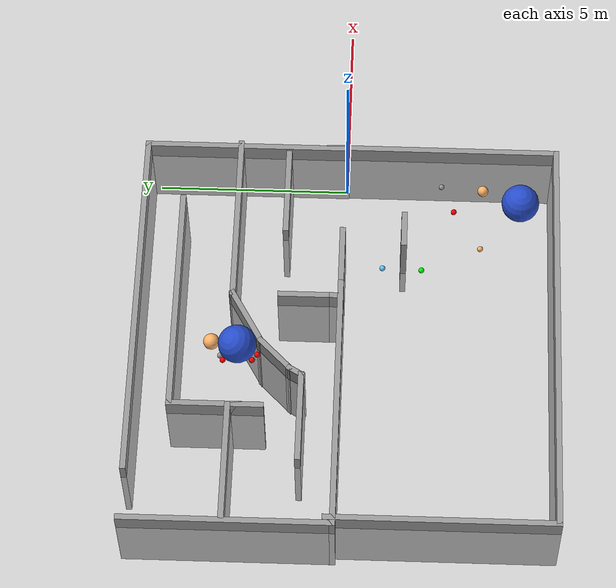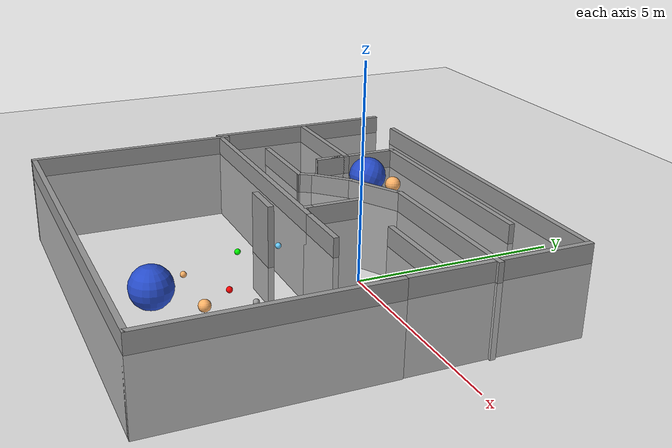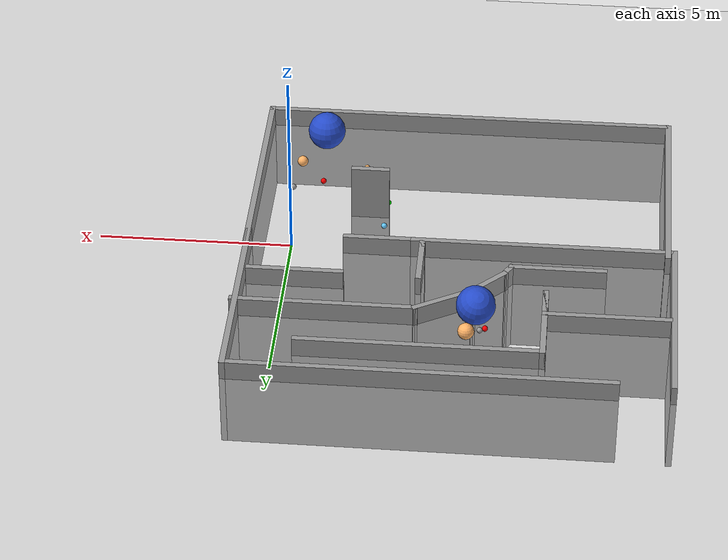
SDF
<sdf version="1.7">
 <world name="default">
  <light name="sun" type="directional">
   <pose>0 0 10 0 -0 0</pose>
   <diffuse>0.8 0.8 0.8 1</diffuse>
   <specular>0.2 0.2 0.2 1</specular>
   <attenuation>
    <range>1000</range>
    <constant>0.9</constant>
    <linear>0.01</linear>
    <quadratic>0.001</quadratic>
   </attenuation>
   <direction>-0.5 0.1 -0.9</direction>
   <spot><inner_angle>0</inner_angle><outer_angle>0</outer_angle><falloff>0</falloff></spot>
  </light>
  <model name="ground_plane">
   <static>1</static>
   <link name="link">
    <collision name="collision">
     <geometry><plane><normal>0 0 1</normal><size>100 100</size></plane></geometry>
     <surface>
      <contact><collide_bitmask>65535</collide_bitmask></contact>
      <friction><ode><mu>100</mu><mu2>50</mu2></ode></friction>
     </surface>
    </collision>
    <visual name="visual">
     <cast_shadows>0</cast_shadows>
     <geometry><plane><normal>0 0 1</normal><size>100 100</size></plane></geometry>
     <material>
      <script><uri>file://media/materials/scripts/gazebo.material</uri><name>Gazebo/Grey</name></script>
     </material>
    </visual>
   </link>
  </model>
  <gravity>0 0 -9.8</gravity>
  <magnetic_field>6e-06 2.3e-05 -4.2e-05</magnetic_field>
  <atmosphere type="adiabatic"/>
  <physics type="ode">
   <max_step_size>0.001</max_step_size>
   <real_time_factor>1</real_time_factor>
   <real_time_update_rate>1000</real_time_update_rate>
  </physics>
  <scene><ambient>0.4 0.4 0.4 1</ambient><background>0.7 0.7 0.7 1</background><shadows>1</shadows></scene>
  <spherical_coordinates>
   <surface_model>EARTH_WGS84</surface_model>
   <latitude_deg>0</latitude_deg>
   <longitude_deg>0</longitude_deg>
   <elevation>0</elevation>
   <heading_deg>0</heading_deg>
  </spherical_coordinates>
  <model name="wallreall">
   <pose>-4.35394 2.74718 -2 0 -0 0</pose>
   <link name="Wall_11">
    <collision name="Wall_11_Collision">
     <geometry><box><size>2.5 0.15 2.5</size></box></geometry>
     <pose>0 0 1.25 0 -0 0</pose>
    </collision>
    <visual name="Wall_11_Visual">
     <pose>0 0 1.25 0 -0 0</pose>
     <geometry><box><size>2.5 0.15 2.5</size></box></geometry>
     <material>
      <script><uri>file://media/materials/scripts/gazebo.material</uri><name>Gazebo/Grey</name></script>
      <ambient>1 1 1 1</ambient>
     </material>
     <meta><layer>0</layer></meta>
    </visual>
    <pose>4.09209 -1.14764 0 0 -0 0</pose>
   </link>
   <link name="Wall_16">
    <collision name="Wall_16_Collision">
     <geometry><box><size>0.25 0.15 2.5</size></box></geometry>
     <pose>0 0 1.25 0 -0 0</pose>
    </collision>
    <visual name="Wall_16_Visual">
     <pose>0 0 1.25 0 -0 0</pose>
     <geometry><box><size>0.25 0.15 2.5</size></box></geometry>
     <material>
      <script><uri>file://media/materials/scripts/gazebo.material</uri><name>Gazebo/Grey</name></script>
      <ambient>1 1 1 1</ambient>
     </material>
     <meta><layer>0</layer></meta>
    </visual>
    <pose>0.933342 -2.49369 0 0 -0 -1.5708</pose>
   </link>
   <link name="Wall_18">
    <collision name="Wall_18_Collision">
     <geometry><box><size>3.25 0.15 2.5</size></box></geometry>
     <pose>0 0 1.25 0 -0 0</pose>
    </collision>
    <visual name="Wall_18_Visual">
     <pose>0 0 1.25 0 -0 0</pose>
     <geometry><box><size>3.25 0.15 2.5</size></box></geometry>
     <material>
      <script><uri>file://media/materials/scripts/gazebo.material</uri><name>Gazebo/Grey</name></script>
      <ambient>1 1 1 1</ambient>
     </material>
     <meta><layer>0</layer></meta>
    </visual>
    <pose>-3.86466 0.121961 0 0 -0 0</pose>
   </link>
   <link name="Wall_19">
    <collision name="Wall_19_Collision">
     <geometry><box><size>1 0.15 2.5</size></box></geometry>
     <pose>0 0 1.25 0 -0 0</pose>
    </collision>
    <visual name="Wall_19_Visual">
     <pose>0 0 1.25 0 -0 0</pose>
     <geometry><box><size>1 0.15 2.5</size></box></geometry>
     <material>
      <script><uri>file://media/materials/scripts/gazebo.material</uri><name>Gazebo/Grey</name></script>
      <ambient>1 1 1 1</ambient>
     </material>
     <meta><layer>0</layer></meta>
    </visual>
    <pose>-2.31466 -0.303039 0 0 -0 -1.5708</pose>
   </link>
   <link name="Wall_2">
    <collision name="Wall_2_Collision">
     <geometry><box><size>7 0.15 2.5</size></box></geometry>
     <pose>0 0 1.25 0 -0 0</pose>
    </collision>
    <visual name="Wall_2_Visual">
     <pose>0 0 1.25 0 -0 0</pose>
     <geometry><box><size>7 0.15 2.5</size></box></geometry>
     <material>
      <script><uri>file://media/materials/scripts/gazebo.material</uri><name>Gazebo/Grey</name></script>
      <ambient>1 1 1 1</ambient>
     </material>
     <meta><layer>0</layer></meta>
    </visual>
    <pose>-2.10834 -2.66116 0 0 -0 0</pose>
   </link>
   <link name="Wall_20">
    <collision name="Wall_20_Collision">
     <geometry><box><size>2.5 0.15 2.5</size></box></geometry>
     <pose>0 0 1.25 0 -0 0</pose>
    </collision>
    <visual name="Wall_20_Visual">
     <pose>0 0 1.25 0 -0 0</pose>
     <geometry><box><size>2.5 0.15 2.5</size></box></geometry>
     <material>
      <script><uri>file://media/materials/scripts/gazebo.material</uri><name>Gazebo/Grey</name></script>
      <ambient>1 1 1 1</ambient>
     </material>
     <meta><layer>0</layer></meta>
    </visual>
    <pose>-2.31466 0.446961 0 0 -0 1.5708</pose>
   </link>
   <link name="Wall_21">
    <collision name="Wall_21_Collision">
     <geometry><box><size>6.25 0.15 2.5</size></box></geometry>
     <pose>0 0 1.25 0 -0 0</pose>
    </collision>
    <visual name="Wall_21_Visual">
     <pose>0 0 1.25 0 -0 0</pose>
     <geometry><box><size>6.25 0.15 2.5</size></box></geometry>
     <material>
      <script><uri>file://media/materials/scripts/gazebo.material</uri><name>Gazebo/Grey</name></script>
      <ambient>1 1 1 1</ambient>
     </material>
     <meta><layer>0</layer></meta>
    </visual>
    <pose>0.735342 1.62196 0 0 -0 0</pose>
   </link>
   <link name="Wall_25">
    <collision name="Wall_25_Collision">
     <geometry><box><size>4.75 0.15 2.5</size></box></geometry>
     <pose>0 0 1.25 0 -0 0</pose>
    </collision>
    <visual name="Wall_25_Visual">
     <pose>0 0 1.25 0 -0 0</pose>
     <geometry><box><size>4.75 0.15 2.5</size></box></geometry>
     <material>
      <script><uri>file://media/materials/scripts/gazebo.material</uri><name>Gazebo/Grey</name></script>
      <ambient>1 1 1 1</ambient>
     </material>
     <meta><layer>0</layer></meta>
    </visual>
    <pose>3.23334 0.156311 0 0 -0 0</pose>
   </link>
   <link name="Wall_27">
    <collision name="Wall_27_Collision">
     <geometry><box><size>1.5 0.15 2.5</size></box></geometry>
     <pose>0 0 1.25 0 -0 0</pose>
    </collision>
    <visual name="Wall_27_Visual">
     <pose>0 0 1.25 0 -0 0</pose>
     <geometry><box><size>1.5 0.15 2.5</size></box></geometry>
     <material>
      <script><uri>file://media/materials/scripts/gazebo.material</uri><name>Gazebo/Grey</name></script>
      <ambient>1 1 1 1</ambient>
     </material>
     <meta><layer>0</layer></meta>
    </visual>
    <pose>0.933342 -1.76869 0 0 -0 1.5708</pose>
   </link>
   <link name="Wall_29">
    <collision name="Wall_29_Collision">
     <geometry><box><size>1.75 0.15 2.5</size></box></geometry>
     <pose>0 0 1.25 0 -0 0</pose>
    </collision>
    <visual name="Wall_29_Visual">
     <pose>0 0 1.25 0 -0 0</pose>
     <geometry><box><size>1.75 0.15 2.5</size></box></geometry>
     <material>
      <script><uri>file://media/materials/scripts/gazebo.material</uri><name>Gazebo/Grey</name></script>
      <ambient>1 1 1 1</ambient>
     </material>
     <meta><layer>0</layer></meta>
    </visual>
    <pose>0.240521 -0.243689 0 0 -0 -2.61799</pose>
   </link>
   <link name="Wall_31">
    <collision name="Wall_31_Collision">
     <geometry><box><size>1.25 0.15 2.5</size></box></geometry>
     <pose>0 0 1.25 0 -0 0</pose>
    </collision>
    <visual name="Wall_31_Visual">
     <pose>0 0 1.25 0 -0 0</pose>
     <geometry><box><size>1.25 0.15 2.5</size></box></geometry>
     <material>
      <script><uri>file://media/materials/scripts/gazebo.material</uri><name>Gazebo/Grey</name></script>
      <ambient>1 1 1 1</ambient>
     </material>
     <meta><layer>0</layer></meta>
    </visual>
    <pose>-0.841208 -1.0326 0 0 -0 -2.35619</pose>
   </link>
   <link name="Wall_32">
    <collision name="Wall_32_Collision">
     <geometry><box><size>0.5 0.15 2.5</size></box></geometry>
     <pose>0 0 1.25 0 -0 0</pose>
    </collision>
    <visual name="Wall_32_Visual">
     <pose>0 0 1.25 0 -0 0</pose>
     <geometry><box><size>0.5 0.15 2.5</size></box></geometry>
     <material>
      <script><uri>file://media/materials/scripts/gazebo.material</uri><name>Gazebo/Grey</name></script>
      <ambient>1 1 1 1</ambient>
     </material>
     <meta><layer>0</layer></meta>
    </visual>
    <pose>-1.31762 -1.57306 0 0 -0 -2.0944</pose>
   </link>
   <link name="Wall_33">
    <collision name="Wall_33_Collision">
     <geometry><box><size>2.5 0.15 2.5</size></box></geometry>
     <pose>0 0 1.25 0 -0 0</pose>
    </collision>
    <visual name="Wall_33_Visual">
     <pose>0 0 1.25 0 -0 0</pose>
     <geometry><box><size>2.5 0.15 2.5</size></box></geometry>
     <material>
      <script><uri>file://media/materials/scripts/gazebo.material</uri><name>Gazebo/Grey</name></script>
      <ambient>1 1 1 1</ambient>
     </material>
     <meta><layer>0</layer></meta>
    </visual>
    <pose>-2.58012 -1.72462 0 0 -0 3.14159</pose>
   </link>
   <link name="Wall_4">
    <collision name="Wall_4_Collision">
     <geometry><box><size>5.5 0.15 2.5</size></box></geometry>
     <pose>0 0 1.25 0 -0 0</pose>
    </collision>
    <visual name="Wall_4_Visual">
     <pose>0 0 1.25 0 -0 0</pose>
     <geometry><box><size>5.5 0.15 2.5</size></box></geometry>
     <material>
      <script><uri>file://media/materials/scripts/gazebo.material</uri><name>Gazebo/Grey</name></script>
      <ambient>1 1 1 1</ambient>
     </material>
     <meta><layer>0</layer></meta>
    </visual>
    <pose>-5.53334 0.013839 0 0 -0 1.5708</pose>
   </link>
   <link name="Wall_6">
    <collision name="Wall_6_Collision">
     <geometry><box><size>9.75 0.15 2.5</size></box></geometry>
     <pose>0 0 1.25 0 -0 0</pose>
    </collision>
    <visual name="Wall_6_Visual">
     <pose>0 0 1.25 0 -0 0</pose>
     <geometry><box><size>9.75 0.15 2.5</size></box></geometry>
     <material>
      <script><uri>file://media/materials/scripts/gazebo.material</uri><name>Gazebo/Grey</name></script>
      <ambient>1 1 1 1</ambient>
     </material>
     <meta><layer>0</layer></meta>
    </visual>
    <pose>0.654942 2.66116 0 0 -0 0</pose>
   </link>
   <link name="Wall_7">
    <collision name="Wall_7_Collision">
     <geometry><box><size>5.5 0.15 2.5</size></box></geometry>
     <pose>0 0 1.25 0 -0 0</pose>
    </collision>
    <visual name="Wall_7_Visual">
     <pose>0 0 1.25 0 -0 0</pose>
     <geometry><box><size>5.5 0.15 2.5</size></box></geometry>
     <material>
      <script><uri>file://media/materials/scripts/gazebo.material</uri><name>Gazebo/Grey</name></script>
      <ambient>1 1 1 1</ambient>
     </material>
     <meta><layer>0</layer></meta>
    </visual>
    <pose>5.45494 -0.013839 0 0 -0 -1.5708</pose>
   </link>
   <link name="Wall_9">
    <collision name="Wall_9_Collision">
     <geometry><box><size>1.75 0.15 2.5</size></box></geometry>
     <pose>0 0 1.25 0 -0 0</pose>
    </collision>
    <visual name="Wall_9_Visual">
     <pose>0 0 1.25 0 -0 0</pose>
     <geometry><box><size>1.75 0.15 2.5</size></box></geometry>
     <material>
      <script><uri>file://media/materials/scripts/gazebo.material</uri><name>Gazebo/Grey</name></script>
      <ambient>1 1 1 1</ambient>
     </material>
     <meta><layer>0</layer></meta>
    </visual>
    <pose>2.11666 -2.66116 0 0 -0 0</pose>
   </link>
   <static>1</static>
  </model>
  <model name="task1">
   <pose>-4.30169 -2.53199 -2 0 -0 0</pose>
   <link name="Wall_10">
    <collision name="Wall_10_Collision">
     <geometry><box><size>6 0.15 2.5</size></box></geometry>
     <pose>0 0 1.25 0 -0 0</pose>
    </collision>
    <visual name="Wall_10_Visual">
     <pose>0 0 1.25 0 -0 0</pose>
     <geometry><box><size>6 0.15 2.5</size></box></geometry>
     <material>
      <script><uri>file://media/materials/scripts/gazebo.material</uri><name>Gazebo/Grey</name></script>
      <ambient>1 1 1 1</ambient>
     </material>
     <meta><layer>0</layer></meta>
    </visual>
    <pose>-5.425 -0.125 0 0 -0 -1.5708</pose>
   </link>
   <link name="Wall_11">
    <collision name="Wall_11_Collision">
     <geometry><box><size>11 0.15 2.5</size></box></geometry>
     <pose>0 0 1.25 0 -0 0</pose>
    </collision>
    <visual name="Wall_11_Visual">
     <pose>0 0 1.25 0 -0 0</pose>
     <geometry><box><size>11 0.15 2.5</size></box></geometry>
     <material>
      <script><uri>file://media/materials/scripts/gazebo.material</uri><name>Gazebo/Grey</name></script>
      <ambient>1 1 1 1</ambient>
     </material>
     <meta><layer>0</layer></meta>
    </visual>
    <pose>0 -3.05 0 0 -0 0</pose>
   </link>
   <link name="Wall_12">
    <collision name="Wall_12_Collision">
     <geometry><box><size>6.25 0.15 2.5</size></box></geometry>
     <pose>0 0 1.25 0 -0 0</pose>
    </collision>
    <visual name="Wall_12_Visual">
     <pose>0 0 1.25 0 -0 0</pose>
     <geometry><box><size>6.25 0.15 2.5</size></box></geometry>
     <material>
      <script><uri>file://media/materials/scripts/gazebo.material</uri><name>Gazebo/Grey</name></script>
      <ambient>1 1 1 1</ambient>
     </material>
     <meta><layer>0</layer></meta>
    </visual>
    <pose>5.425 0 0 0 -0 1.5708</pose>
   </link>
   <static>1</static>
  </model>
  <model name="a_reall_ball02">
   <link name="link">
    <inertial>
     <mass>0.0445585</mass>
     <inertia>
      <ixx>9.787e-05</ixx>
      <ixy>0</ixy>
      <ixz>0</ixz>
      <iyy>9.787e-05</iyy>
      <iyz>0</iyz>
      <izz>9.787e-05</izz>
     </inertia>
    </inertial>
    <pose>0 0 0.136953 0 -0 0</pose>
    <visual name="visual">
     <geometry><sphere><radius>0.0741029</radius></sphere></geometry>
     <material>
      <script><name>Gazebo/Grey</name><uri>file://media/materials/scripts/gazebo.material</uri></script>
      <shader type="pixel"><normal_map>__default__</normal_map></shader>
      <ambient>1 1 1 0</ambient>
      <diffuse>0.7 0.7 0.7 1</diffuse>
      <specular>0.01 0.01 0.01 1</specular>
      <emissive>0 0 0 1</emissive>
     </material>
    </visual>
    <collision name="collision">
     <geometry><sphere><radius>0.074103</radius></sphere></geometry>
     <surface>
      <friction>
       <ode><mu>1</mu><mu2>1</mu2><fdir1>0 0 0</fdir1><slip1>0</slip1><slip2>0</slip2></ode>
       <torsional>
        <coefficient>1</coefficient>
        <patch_radius>0</patch_radius>
        <surface_radius>0</surface_radius>
        <use_patch_radius>1</use_patch_radius>
        <ode><slip>0</slip></ode>
       </torsional>
      </friction>
      <bounce><restitution_coefficient>0</restitution_coefficient><threshold>1e+06</threshold></bounce>
      <contact>
       <collide_without_contact>0</collide_without_contact>
       <collide_without_contact_bitmask>1</collide_without_contact_bitmask>
       <collide_bitmask>1</collide_bitmask>
       <ode>
        <soft_cfm>0</soft_cfm>
        <soft_erp>0.2</soft_erp>
        <kp>1e+13</kp>
        <kd>1</kd>
        <max_vel>0.01</max_vel>
        <min_depth>0</min_depth>
       </ode>
       <bullet>
        <split_impulse>1</split_impulse>
        <split_impulse_penetration_threshold>-0.01</split_impulse_penetration_threshold>
        <soft_cfm>0</soft_cfm>
        <soft_erp>0.2</soft_erp>
        <kp>1e+13</kp>
        <kd>1</kd>
       </bullet>
      </contact>
     </surface>
    </collision>
   </link>
   <static>0</static>
   <pose>0.218138 -2.52371 -0.06285 0 -0 0</pose>
  </model>
  <model name="a_reall_ball02_0">
   <link name="link">
    <inertial>
     <mass>0.0445585</mass>
     <inertia>
      <ixx>9.787e-05</ixx>
      <ixy>0</ixy>
      <ixz>0</ixz>
      <iyy>9.787e-05</iyy>
      <iyz>0</iyz>
      <izz>9.787e-05</izz>
     </inertia>
    </inertial>
    <pose>0 0 0.136953 0 -0 0</pose>
    <visual name="visual">
     <geometry><sphere><radius>0.0741029</radius></sphere></geometry>
     <material>
      <script><name>Gazebo/Grey</name><uri>file://media/materials/scripts/gazebo.material</uri></script>
      <shader type="pixel"><normal_map>__default__</normal_map></shader>
      <ambient>1 0 0 0</ambient>
      <diffuse>0.7 0.7 0.7 1</diffuse>
      <specular>0.01 0.01 0.01 1</specular>
      <emissive>0 0 0 1</emissive>
     </material>
    </visual>
    <collision name="collision">
     <geometry><sphere><radius>0.074103</radius></sphere></geometry>
     <surface>
      <friction>
       <ode><mu>1</mu><mu2>1</mu2><fdir1>0 0 0</fdir1><slip1>0</slip1><slip2>0</slip2></ode>
       <torsional>
        <coefficient>1</coefficient>
        <patch_radius>0</patch_radius>
        <surface_radius>0</surface_radius>
        <use_patch_radius>1</use_patch_radius>
        <ode><slip>0</slip></ode>
       </torsional>
      </friction>
      <bounce><restitution_coefficient>0</restitution_coefficient><threshold>1e+06</threshold></bounce>
      <contact>
       <collide_without_contact>0</collide_without_contact>
       <collide_without_contact_bitmask>1</collide_without_contact_bitmask>
       <collide_bitmask>1</collide_bitmask>
       <ode>
        <soft_cfm>0</soft_cfm>
        <soft_erp>0.2</soft_erp>
        <kp>1e+13</kp>
        <kd>1</kd>
        <max_vel>0.01</max_vel>
        <min_depth>0</min_depth>
       </ode>
       <bullet>
        <split_impulse>1</split_impulse>
        <split_impulse_penetration_threshold>-0.01</split_impulse_penetration_threshold>
        <soft_cfm>0</soft_cfm>
        <soft_erp>0.2</soft_erp>
        <kp>1e+13</kp>
        <kd>1</kd>
       </bullet>
      </contact>
     </surface>
    </collision>
   </link>
   <static>0</static>
   <pose>-0.55361 -2.85771 -0.06285 0 -0 0</pose>
  </model>
  <model name="a_reall_ball02_1">
   <link name="link">
    <inertial>
     <mass>0.0445585</mass>
     <inertia>
      <ixx>9.787e-05</ixx>
      <ixy>0</ixy>
      <ixz>0</ixz>
      <iyy>9.787e-05</iyy>
      <iyz>0</iyz>
      <izz>9.787e-05</izz>
     </inertia>
    </inertial>
    <pose>0 0 0.136953 0 -0 0</pose>
    <visual name="visual">
     <geometry><sphere><radius>0.0741029</radius></sphere></geometry>
     <material>
      <script><name>Gazebo/Grey</name><uri>file://media/materials/scripts/gazebo.material</uri></script>
      <shader type="pixel"><normal_map>__default__</normal_map></shader>
      <ambient>0.4 0.8 1 0</ambient>
      <diffuse>0.7 0.7 0.7 1</diffuse>
      <specular>0.01 0.01 0.01 1</specular>
      <emissive>0 0 0 1</emissive>
     </material>
    </visual>
    <collision name="collision">
     <geometry><sphere><radius>0.074103</radius></sphere></geometry>
     <surface>
      <friction>
       <ode><mu>1</mu><mu2>1</mu2><fdir1>0 0 0</fdir1><slip1>0</slip1><slip2>0</slip2></ode>
       <torsional>
        <coefficient>1</coefficient>
        <patch_radius>0</patch_radius>
        <surface_radius>0</surface_radius>
        <use_patch_radius>1</use_patch_radius>
        <ode><slip>0</slip></ode>
       </torsional>
      </friction>
      <bounce><restitution_coefficient>0</restitution_coefficient><threshold>1e+06</threshold></bounce>
      <contact>
       <collide_without_contact>0</collide_without_contact>
       <collide_without_contact_bitmask>1</collide_without_contact_bitmask>
       <collide_bitmask>1</collide_bitmask>
       <ode>
        <soft_cfm>0</soft_cfm>
        <soft_erp>0.2</soft_erp>
        <kp>1e+13</kp>
        <kd>1</kd>
        <max_vel>0.01</max_vel>
        <min_depth>0</min_depth>
       </ode>
       <bullet>
        <split_impulse>1</split_impulse>
        <split_impulse_penetration_threshold>-0.01</split_impulse_penetration_threshold>
        <soft_cfm>0</soft_cfm>
        <soft_erp>0.2</soft_erp>
        <kp>1e+13</kp>
        <kd>1</kd>
       </bullet>
      </contact>
     </surface>
    </collision>
   </link>
   <static>0</static>
   <pose>-2.33768 -0.990806 -0.06285 0 -0 0</pose>
  </model>
  <model name="a_reall_ball">
   <link name="link">
    <inertial>
     <mass>0.318333</mass>
     <inertia>
      <ixx>0.00259372</ixx>
      <ixy>0</ixy>
      <ixz>0</ixz>
      <iyy>0.00259372</iyy>
      <iyz>0</iyz>
      <izz>0.00259372</izz>
     </inertia>
    </inertial>
    <pose>0 0 0.136953 0 -0 0</pose>
    <visual name="visual">
     <geometry><sphere><radius>0.142722</radius></sphere></geometry>
     <material>
      <script><name>Gazebo/Grey</name><uri>file://media/materials/scripts/gazebo.material</uri></script>
      <shader type="pixel"><normal_map>__default__</normal_map></shader>
      <ambient>1 0.7 0.4 0</ambient>
      <diffuse>0.7 0.7 0.7 1</diffuse>
      <specular>0.01 0.01 0.01 1</specular>
      <emissive>0 0 0 1</emissive>
     </material>
    </visual>
    <collision name="collision">
     <geometry><sphere><radius>0.142722</radius></sphere></geometry>
     <surface>
      <friction>
       <ode><mu>1</mu><mu2>1</mu2><fdir1>0 0 0</fdir1><slip1>0</slip1><slip2>0</slip2></ode>
       <torsional>
        <coefficient>1</coefficient>
        <patch_radius>0</patch_radius>
        <surface_radius>0</surface_radius>
        <use_patch_radius>1</use_patch_radius>
        <ode><slip>0</slip></ode>
       </torsional>
      </friction>
      <bounce><restitution_coefficient>0</restitution_coefficient><threshold>1e+06</threshold></bounce>
      <contact>
       <collide_without_contact>0</collide_without_contact>
       <collide_without_contact_bitmask>1</collide_without_contact_bitmask>
       <collide_bitmask>1</collide_bitmask>
       <ode>
        <soft_cfm>0</soft_cfm>
        <soft_erp>0.2</soft_erp>
        <kp>1e+13</kp>
        <kd>1</kd>
        <max_vel>0.01</max_vel>
        <min_depth>0</min_depth>
       </ode>
       <bullet>
        <split_impulse>1</split_impulse>
        <split_impulse_penetration_threshold>-0.01</split_impulse_penetration_threshold>
        <soft_cfm>0</soft_cfm>
        <soft_erp>0.2</soft_erp>
        <kp>1e+13</kp>
        <kd>1</kd>
       </bullet>
      </contact>
     </surface>
    </collision>
   </link>
   <static>0</static>
   <pose>0.082977 -3.63115 0.005769 0 -0 0</pose>
  </model>
  <model name="a_reall_ball02_2">
   <link name="link">
    <inertial>
     <mass>0.0445585</mass>
     <inertia>
      <ixx>9.78725e-05</ixx>
      <ixy>0</ixy>
      <ixz>0</ixz>
      <iyy>9.78725e-05</iyy>
      <iyz>0</iyz>
      <izz>9.78725e-05</izz>
     </inertia>
    </inertial>
    <pose>-0 -0 0.136953 0 -0 0</pose>
    <visual name="visual">
     <geometry><sphere><radius>0.0741029</radius></sphere></geometry>
     <material>
      <script><name>Gazebo/Grey</name><uri>file://media/materials/scripts/gazebo.material</uri></script>
      <shader type="pixel"><normal_map>__default__</normal_map></shader>
      <ambient>1 0.7 0.4 0</ambient>
      <diffuse>0.7 0.7 0.7 1</diffuse>
      <specular>0.01 0.01 0.01 1</specular>
      <emissive>0 0 0 1</emissive>
     </material>
    </visual>
    <collision name="collision">
     <geometry><sphere><radius>0.074103</radius></sphere></geometry>
     <surface>
      <friction>
       <ode><mu>1</mu><mu2>1</mu2><fdir1>0 0 0</fdir1><slip1>0</slip1><slip2>0</slip2></ode>
       <torsional>
        <coefficient>1</coefficient>
        <patch_radius>0</patch_radius>
        <surface_radius>0</surface_radius>
        <use_patch_radius>1</use_patch_radius>
        <ode><slip>0</slip></ode>
       </torsional>
      </friction>
      <bounce><restitution_coefficient>0</restitution_coefficient><threshold>1e+06</threshold></bounce>
      <contact>
       <collide_without_contact>0</collide_without_contact>
       <collide_without_contact_bitmask>1</collide_without_contact_bitmask>
       <collide_bitmask>1</collide_bitmask>
       <ode>
        <soft_cfm>0</soft_cfm>
        <soft_erp>0.2</soft_erp>
        <kp>1e+13</kp>
        <kd>1</kd>
        <max_vel>0.01</max_vel>
        <min_depth>0</min_depth>
       </ode>
       <bullet>
        <split_impulse>1</split_impulse>
        <split_impulse_penetration_threshold>-0.01</split_impulse_penetration_threshold>
        <soft_cfm>0</soft_cfm>
        <soft_erp>0.2</soft_erp>
        <kp>1e+13</kp>
        <kd>1</kd>
       </bullet>
      </contact>
     </surface>
    </collision>
   </link>
   <static>0</static>
   <pose>-1.67048 -3.5694 -0.06285 0 -0 0</pose>
  </model>
  <model name="ball1">
   <link name="link_0">
    <inertial>
     <mass>1</mass>
     <inertia><ixx>0.1</ixx><ixy>0</ixy><ixz>0</ixz><iyy>0.1</iyy><iyz>0</iyz><izz>0.1</izz></inertia>
    </inertial>
    <visual name="visual">
     <geometry><sphere><radius>0.5</radius></sphere></geometry>
     <material>
      <lighting>1</lighting>
      <script><uri>file://media/materials/scripts/gazebo.material</uri><name>Gazebo/Blue</name></script>
      <shader type="pixel"/>
     </material>
    </visual>
    <collision name="collision">
     <geometry><sphere><radius>0.5</radius></sphere></geometry>
     <surface>
      <friction>
       <ode><mu>1</mu><mu2>1</mu2><fdir1>0 0 0</fdir1><slip1>0</slip1><slip2>0</slip2></ode>
       <torsional>
        <coefficient>1</coefficient>
        <patch_radius>0</patch_radius>
        <surface_radius>0</surface_radius>
        <use_patch_radius>1</use_patch_radius>
        <ode><slip>0</slip></ode>
       </torsional>
      </friction>
      <bounce><restitution_coefficient>0</restitution_coefficient><threshold>1e+06</threshold></bounce>
      <contact>
       <collide_without_contact>0</collide_without_contact>
       <collide_without_contact_bitmask>1</collide_without_contact_bitmask>
       <collide_bitmask>1</collide_bitmask>
       <ode>
        <soft_cfm>0</soft_cfm>
        <soft_erp>0.2</soft_erp>
        <kp>1e+13</kp>
        <kd>1</kd>
        <max_vel>0.01</max_vel>
        <min_depth>0</min_depth>
       </ode>
       <bullet>
        <split_impulse>1</split_impulse>
        <split_impulse_penetration_threshold>-0.01</split_impulse_penetration_threshold>
        <soft_cfm>0</soft_cfm>
        <soft_erp>0.2</soft_erp>
        <kp>1e+13</kp>
        <kd>1</kd>
       </bullet>
      </contact>
     </surface>
    </collision>
   </link>
   <static>0</static>
   <pose>-0.477168 -4.61402 0.5 0 -0 0</pose>
  </model>
  <model name="lvseball">
   <link name="link">
    <inertial>
     <mass>0.0445585</mass>
     <inertia>
      <ixx>9.787e-05</ixx>
      <ixy>0</ixy>
      <ixz>0</ixz>
      <iyy>9.787e-05</iyy>
      <iyz>0</iyz>
      <izz>9.787e-05</izz>
     </inertia>
    </inertial>
    <pose>0 0 0.136953 0 -0 0</pose>
    <visual name="visual">
     <geometry><sphere><radius>0.0741029</radius></sphere></geometry>
     <material>
      <script><name>Gazebo/Grey</name><uri>file://media/materials/scripts/gazebo.material</uri></script>
      <shader type="pixel"><normal_map>__default__</normal_map></shader>
      <ambient>0 1 0 0</ambient>
      <diffuse>0.7 0.7 0.7 1</diffuse>
      <specular>0.01 0.01 0.01 1</specular>
      <emissive>0 0 0 1</emissive>
     </material>
    </visual>
    <collision name="collision">
     <geometry><sphere><radius>0.074103</radius></sphere></geometry>
     <surface>
      <friction>
       <ode><mu>1</mu><mu2>1</mu2><fdir1>0 0 0</fdir1><slip1>0</slip1><slip2>0</slip2></ode>
       <torsional>
        <coefficient>1</coefficient>
        <patch_radius>0</patch_radius>
        <surface_radius>0</surface_radius>
        <use_patch_radius>1</use_patch_radius>
        <ode><slip>0</slip></ode>
       </torsional>
      </friction>
      <bounce><restitution_coefficient>0</restitution_coefficient><threshold>1e+06</threshold></bounce>
      <contact>
       <collide_without_contact>0</collide_without_contact>
       <collide_without_contact_bitmask>1</collide_without_contact_bitmask>
       <collide_bitmask>1</collide_bitmask>
       <ode>
        <soft_cfm>0</soft_cfm>
        <soft_erp>0.2</soft_erp>
        <kp>1e+13</kp>
        <kd>1</kd>
        <max_vel>0.01</max_vel>
        <min_depth>0</min_depth>
       </ode>
       <bullet>
        <split_impulse>1</split_impulse>
        <split_impulse_penetration_threshold>-0.01</split_impulse_penetration_threshold>
        <soft_cfm>0</soft_cfm>
        <soft_erp>0.2</soft_erp>
        <kp>1e+13</kp>
        <kd>1</kd>
       </bullet>
      </contact>
     </surface>
    </collision>
   </link>
   <static>0</static>
   <pose>-2.37026 -2.0221 -0.06285 0 -0 0</pose>
  </model>
  <model name="Untitled">
   <pose>-0.959633 -0.88997 -1 0 -0 0</pose>
   <link name="Wall_31">
    <collision name="Wall_31_Collision">
     <geometry><box><size>1 0.15 2.5</size></box></geometry>
     <pose>0 0 1.25 0 -0 0</pose>
    </collision>
    <visual name="Wall_31_Visual">
     <pose>0 0 1.25 0 -0 0</pose>
     <geometry><box><size>1 0.15 2.5</size></box></geometry>
     <material>
      <script><uri>file://media/materials/scripts/gazebo.material</uri><name>Gazebo/Grey</name></script>
      <ambient>1 1 1 1</ambient>
     </material>
     <meta><layer>0</layer></meta>
    </visual>
    <pose>-0.97391 -0.644656 0 0 -0 0</pose>
   </link>
   <static>1</static>
  </model>
  <model name="ball1_0">
   <link name="link_0">
    <inertial>
     <mass>1</mass>
     <inertia><ixx>0.1</ixx><ixy>0</ixy><ixz>0</ixz><iyy>0.1</iyy><iyz>0</iyz><izz>0.1</izz></inertia>
    </inertial>
    <visual name="visual">
     <geometry><sphere><radius>0.5</radius></sphere></geometry>
     <material>
      <lighting>1</lighting>
      <script><uri>file://media/materials/scripts/gazebo.material</uri><name>Gazebo/Blue</name></script>
      <shader type="pixel"/>
     </material>
    </visual>
    <collision name="collision">
     <geometry><sphere><radius>0.5</radius></sphere></geometry>
     <surface>
      <friction>
       <ode><mu>1</mu><mu2>1</mu2><fdir1>0 0 0</fdir1><slip1>0</slip1><slip2>0</slip2></ode>
       <torsional>
        <coefficient>1</coefficient>
        <patch_radius>0</patch_radius>
        <surface_radius>0</surface_radius>
        <use_patch_radius>1</use_patch_radius>
        <ode><slip>0</slip></ode>
       </torsional>
      </friction>
      <bounce><restitution_coefficient>0</restitution_coefficient><threshold>1e+06</threshold></bounce>
      <contact>
       <collide_without_contact>0</collide_without_contact>
       <collide_without_contact_bitmask>1</collide_without_contact_bitmask>
       <collide_bitmask>1</collide_bitmask>
       <ode>
        <soft_cfm>0</soft_cfm>
        <soft_erp>0.2</soft_erp>
        <kp>1e+13</kp>
        <kd>1</kd>
        <max_vel>0.01</max_vel>
        <min_depth>0</min_depth>
       </ode>
       <bullet>
        <split_impulse>1</split_impulse>
        <split_impulse_penetration_threshold>-0.01</split_impulse_penetration_threshold>
        <soft_cfm>0</soft_cfm>
        <soft_erp>0.2</soft_erp>
        <kp>1e+13</kp>
        <kd>1</kd>
       </bullet>
      </contact>
     </surface>
    </collision>
   </link>
   <static>0</static>
   <pose>-4.9421 2.70087 0.5 -0.482075 -0.127893 0.03176</pose>
  </model>
  <model name="a_reall_ball02_0_0">
   <link name="link">
    <inertial>
     <mass>0.0445585</mass>
     <inertia>
      <ixx>9.787e-05</ixx>
      <ixy>0</ixy>
      <ixz>0</ixz>
      <iyy>9.787e-05</iyy>
      <iyz>0</iyz>
      <izz>9.787e-05</izz>
     </inertia>
    </inertial>
    <pose>0 0 0.136953 0 -0 0</pose>
    <visual name="visual">
     <geometry><sphere><radius>0.0741029</radius></sphere></geometry>
     <material>
      <script><name>Gazebo/Grey</name><uri>file://media/materials/scripts/gazebo.material</uri></script>
      <shader type="pixel"><normal_map>__default__</normal_map></shader>
      <ambient>1 0 0 0</ambient>
      <diffuse>0.7 0.7 0.7 1</diffuse>
      <specular>0.01 0.01 0.01 1</specular>
      <emissive>0 0 0 1</emissive>
     </material>
    </visual>
    <collision name="collision">
     <geometry><sphere><radius>0.074103</radius></sphere></geometry>
     <surface>
      <friction>
       <ode><mu>1</mu><mu2>1</mu2><fdir1>0 0 0</fdir1><slip1>0</slip1><slip2>0</slip2></ode>
       <torsional>
        <coefficient>1</coefficient>
        <patch_radius>0</patch_radius>
        <surface_radius>0</surface_radius>
        <use_patch_radius>1</use_patch_radius>
        <ode><slip>0</slip></ode>
       </torsional>
      </friction>
      <bounce><restitution_coefficient>0</restitution_coefficient><threshold>1e+06</threshold></bounce>
      <contact>
       <collide_without_contact>0</collide_without_contact>
       <collide_without_contact_bitmask>1</collide_without_contact_bitmask>
       <collide_bitmask>1</collide_bitmask>
       <ode>
        <soft_cfm>0</soft_cfm>
        <soft_erp>0.2</soft_erp>
        <kp>1e+13</kp>
        <kd>1</kd>
        <max_vel>0.01</max_vel>
        <min_depth>0</min_depth>
       </ode>
       <bullet>
        <split_impulse>1</split_impulse>
        <split_impulse_penetration_threshold>-0.01</split_impulse_penetration_threshold>
        <soft_cfm>0</soft_cfm>
        <soft_erp>0.2</soft_erp>
        <kp>1e+13</kp>
        <kd>1</kd>
       </bullet>
      </contact>
     </surface>
    </collision>
   </link>
   <static>0</static>
   <pose>-5.01983 2.19147 -0.06285 0 -0 0</pose>
  </model>
  <model name="a_reall_ball02_0_1">
   <link name="link">
    <inertial>
     <mass>0.0445585</mass>
     <inertia>
      <ixx>9.787e-05</ixx>
      <ixy>0</ixy>
      <ixz>0</ixz>
      <iyy>9.787e-05</iyy>
      <iyz>0</iyz>
      <izz>9.787e-05</izz>
     </inertia>
    </inertial>
    <pose>0 0 0.136953 0 -0 0</pose>
    <visual name="visual">
     <geometry><sphere><radius>0.0741029</radius></sphere></geometry>
     <material>
      <script><name>Gazebo/Grey</name><uri>file://media/materials/scripts/gazebo.material</uri></script>
      <shader type="pixel"><normal_map>__default__</normal_map></shader>
      <ambient>1 0 0 0</ambient>
      <diffuse>0.7 0.7 0.7 1</diffuse>
      <specular>0.01 0.01 0.01 1</specular>
      <emissive>0 0 0 1</emissive>
     </material>
    </visual>
    <collision name="collision">
     <geometry><sphere><radius>0.074103</radius></sphere></geometry>
     <surface>
      <friction>
       <ode><mu>1</mu><mu2>1</mu2><fdir1>0 0 0</fdir1><slip1>0</slip1><slip2>0</slip2></ode>
       <torsional>
        <coefficient>1</coefficient>
        <patch_radius>0</patch_radius>
        <surface_radius>0</surface_radius>
        <use_patch_radius>1</use_patch_radius>
        <ode><slip>0</slip></ode>
       </torsional>
      </friction>
      <bounce><restitution_coefficient>0</restitution_coefficient><threshold>1e+06</threshold></bounce>
      <contact>
       <collide_without_contact>0</collide_without_contact>
       <collide_without_contact_bitmask>1</collide_without_contact_bitmask>
       <collide_bitmask>1</collide_bitmask>
       <ode>
        <soft_cfm>0</soft_cfm>
        <soft_erp>0.2</soft_erp>
        <kp>1e+13</kp>
        <kd>1</kd>
        <max_vel>0.01</max_vel>
        <min_depth>0</min_depth>
       </ode>
       <bullet>
        <split_impulse>1</split_impulse>
        <split_impulse_penetration_threshold>-0.01</split_impulse_penetration_threshold>
        <soft_cfm>0</soft_cfm>
        <soft_erp>0.2</soft_erp>
        <kp>1e+13</kp>
        <kd>1</kd>
       </bullet>
      </contact>
     </surface>
    </collision>
   </link>
   <static>0</static>
   <pose>-5.1816 2.32058 -0.06285 0 -0 0</pose>
  </model>
  <model name="a_reall_ball02_3">
   <link name="link">
    <inertial>
     <mass>0.0445585</mass>
     <inertia>
      <ixx>9.787e-05</ixx>
      <ixy>0</ixy>
      <ixz>0</ixz>
      <iyy>9.787e-05</iyy>
      <iyz>0</iyz>
      <izz>9.787e-05</izz>
     </inertia>
    </inertial>
    <pose>0 0 0.136953 0 -0 0</pose>
    <visual name="visual">
     <geometry><sphere><radius>0.0741029</radius></sphere></geometry>
     <material>
      <script><name>Gazebo/Grey</name><uri>file://media/materials/scripts/gazebo.material</uri></script>
      <shader type="pixel"><normal_map>__default__</normal_map></shader>
      <ambient>1 1 1 0</ambient>
      <diffuse>0.7 0.7 0.7 1</diffuse>
      <specular>0.01 0.01 0.01 1</specular>
      <emissive>0 0 0 1</emissive>
     </material>
    </visual>
    <collision name="collision">
     <geometry><sphere><radius>0.074103</radius></sphere></geometry>
     <surface>
      <friction>
       <ode><mu>1</mu><mu2>1</mu2><fdir1>0 0 0</fdir1><slip1>0</slip1><slip2>0</slip2></ode>
       <torsional>
        <coefficient>1</coefficient>
        <patch_radius>0</patch_radius>
        <surface_radius>0</surface_radius>
        <use_patch_radius>1</use_patch_radius>
        <ode><slip>0</slip></ode>
       </torsional>
      </friction>
      <bounce><restitution_coefficient>0</restitution_coefficient><threshold>1e+06</threshold></bounce>
      <contact>
       <collide_without_contact>0</collide_without_contact>
       <collide_without_contact_bitmask>1</collide_without_contact_bitmask>
       <collide_bitmask>1</collide_bitmask>
       <ode>
        <soft_cfm>0</soft_cfm>
        <soft_erp>0.2</soft_erp>
        <kp>1e+13</kp>
        <kd>1</kd>
        <max_vel>0.01</max_vel>
        <min_depth>0</min_depth>
       </ode>
       <bullet>
        <split_impulse>1</split_impulse>
        <split_impulse_penetration_threshold>-0.01</split_impulse_penetration_threshold>
        <soft_cfm>0</soft_cfm>
        <soft_erp>0.2</soft_erp>
        <kp>1e+13</kp>
        <kd>1</kd>
       </bullet>
      </contact>
     </surface>
    </collision>
   </link>
   <static>0</static>
   <pose>-5.07034 3.158 -0.06285 0 -0 0</pose>
  </model>
  <model name="a_reall_ball02_0_2">
   <link name="link">
    <inertial>
     <mass>0.0445585</mass>
     <inertia>
      <ixx>9.787e-05</ixx>
      <ixy>0</ixy>
      <ixz>0</ixz>
      <iyy>9.787e-05</iyy>
      <iyz>0</iyz>
      <izz>9.787e-05</izz>
     </inertia>
    </inertial>
    <pose>0 0 0.136953 0 -0 0</pose>
    <visual name="visual">
     <geometry><sphere><radius>0.0741029</radius></sphere></geometry>
     <material>
      <script><name>Gazebo/Grey</name><uri>file://media/materials/scripts/gazebo.material</uri></script>
      <shader type="pixel"><normal_map>__default__</normal_map></shader>
      <ambient>1 0 0 0</ambient>
      <diffuse>0.7 0.7 0.7 1</diffuse>
      <specular>0.01 0.01 0.01 1</specular>
      <emissive>0 0 0 1</emissive>
     </material>
    </visual>
    <collision name="collision">
     <geometry><sphere><radius>0.074103</radius></sphere></geometry>
     <surface>
      <friction>
       <ode><mu>1</mu><mu2>1</mu2><fdir1>0 0 0</fdir1><slip1>0</slip1><slip2>0</slip2></ode>
       <torsional>
        <coefficient>1</coefficient>
        <patch_radius>0</patch_radius>
        <surface_radius>0</surface_radius>
        <use_patch_radius>1</use_patch_radius>
        <ode><slip>0</slip></ode>
       </torsional>
      </friction>
      <bounce><restitution_coefficient>0</restitution_coefficient><threshold>1e+06</threshold></bounce>
      <contact>
       <collide_without_contact>0</collide_without_contact>
       <collide_without_contact_bitmask>1</collide_without_contact_bitmask>
       <collide_bitmask>1</collide_bitmask>
       <ode>
        <soft_cfm>0</soft_cfm>
        <soft_erp>0.2</soft_erp>
        <kp>1e+13</kp>
        <kd>1</kd>
        <max_vel>0.01</max_vel>
        <min_depth>0</min_depth>
       </ode>
       <bullet>
        <split_impulse>1</split_impulse>
        <split_impulse_penetration_threshold>-0.01</split_impulse_penetration_threshold>
        <soft_cfm>0</soft_cfm>
        <soft_erp>0.2</soft_erp>
        <kp>1e+13</kp>
        <kd>1</kd>
       </bullet>
      </contact>
     </surface>
    </collision>
   </link>
   <static>0</static>
   <pose>-5.20059 3.08201 -0.06285 0 -0 0</pose>
  </model>
  <model name="ball2_clone_clone_0">
   <link name="link">
    <inertial>
     <mass>1</mass>
     <inertia><ixx>0.1</ixx><ixy>0</ixy><ixz>0</ixz><iyy>0.1</iyy><iyz>0</iyz><izz>0.1</izz></inertia>
    </inertial>
    <visual name="visual">
     <geometry><sphere><radius>0.209021</radius></sphere></geometry>
     <material>
      <script><name>Gazebo/Grey</name><uri>file://media/materials/scripts/gazebo.material</uri></script>
      <shader type="pixel"><normal_map>__default__</normal_map></shader>
      <ambient>1 0.7 0.4 0</ambient>
      <diffuse>0.7 0.7 0.7 1</diffuse>
      <specular>0.01 0.01 0.01 1</specular>
      <emissive>0 0 0 1</emissive>
     </material>
    </visual>
    <collision name="collision">
     <geometry><sphere><radius>0.209021</radius></sphere></geometry>
     <surface>
      <friction>
       <ode><mu>1</mu><mu2>1</mu2><fdir1>0 0 0</fdir1><slip1>0</slip1><slip2>0</slip2></ode>
       <torsional>
        <coefficient>1</coefficient>
        <patch_radius>0</patch_radius>
        <surface_radius>0</surface_radius>
        <use_patch_radius>1</use_patch_radius>
        <ode><slip>0</slip></ode>
       </torsional>
      </friction>
      <bounce><restitution_coefficient>0</restitution_coefficient><threshold>1e+06</threshold></bounce>
      <contact>
       <collide_without_contact>0</collide_without_contact>
       <collide_without_contact_bitmask>1</collide_without_contact_bitmask>
       <collide_bitmask>1</collide_bitmask>
       <ode>
        <soft_cfm>0</soft_cfm>
        <soft_erp>0.2</soft_erp>
        <kp>1e+13</kp>
        <kd>1</kd>
        <max_vel>0.01</max_vel>
        <min_depth>0</min_depth>
       </ode>
       <bullet>
        <split_impulse>1</split_impulse>
        <split_impulse_penetration_threshold>-0.01</split_impulse_penetration_threshold>
        <soft_cfm>0</soft_cfm>
        <soft_erp>0.2</soft_erp>
        <kp>1e+13</kp>
        <kd>1</kd>
       </bullet>
      </contact>
     </surface>
    </collision>
   </link>
   <static>0</static>
   <pose>-4.73857 3.39427 0.209021 0 -0 0</pose>
  </model>
 </world>
</sdf>
